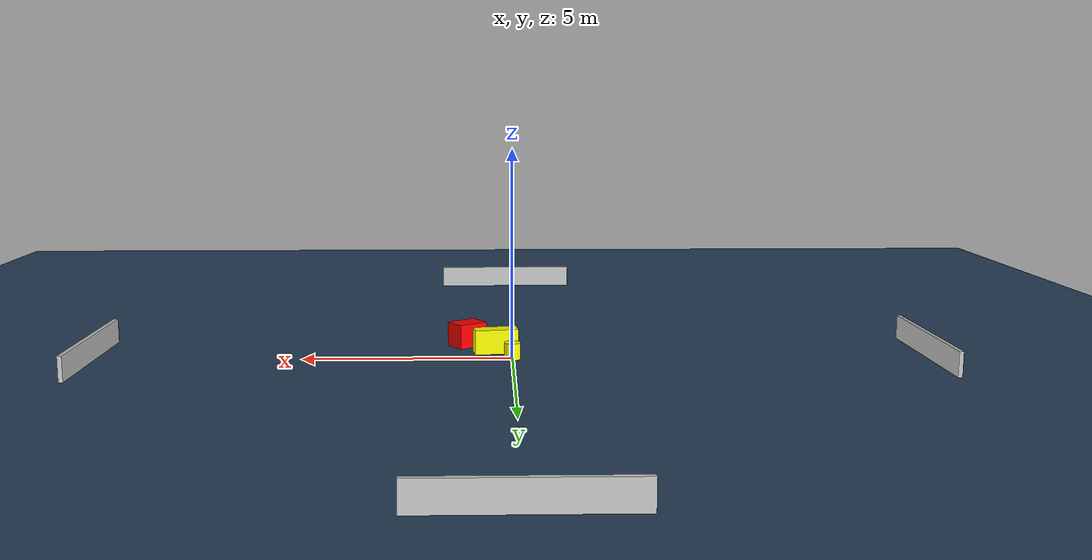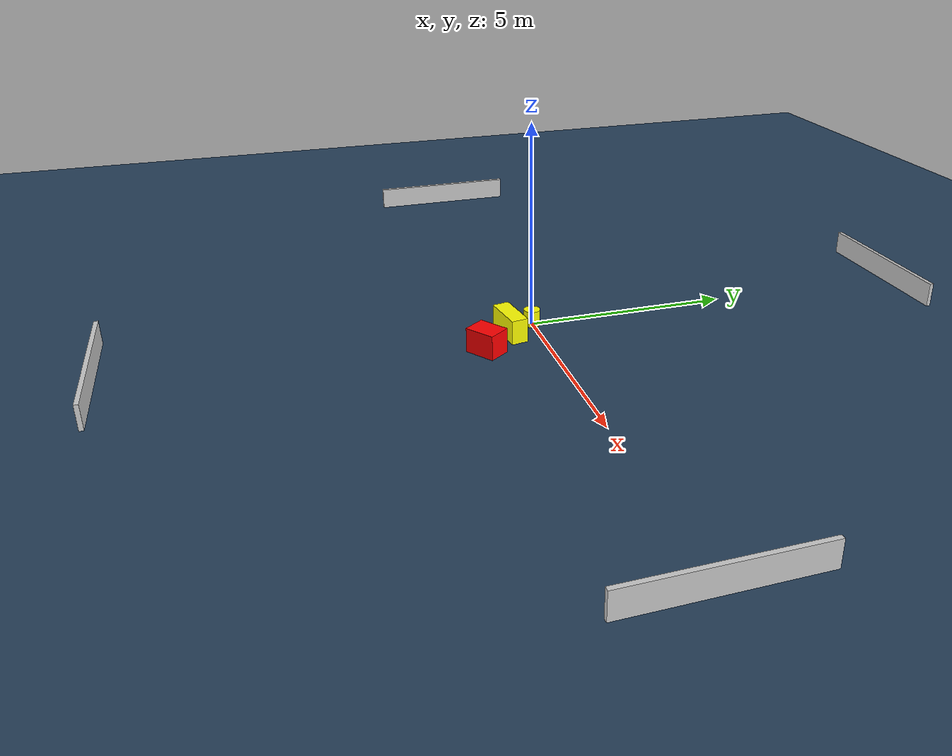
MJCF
<?xml version="1.0" ?>
<mujoco model="generated_environment">
  <option timestep="0.01" integrator="RK4" cone="elliptic"/>
  <default>
    <geom density="1"/>
  </default>
  <asset>
    <texture builtin="gradient" height="3072" name="skybox" rgb1="0.3 0.5 0.7" rgb2="0 0 0" type="skybox" width="512"/>
    <texture builtin="checker" height="300" name="groundplane" rgb1="0.2 0.3 0.4" rgb2="0.1 0.2 0.3" type="2d" width="300"/>
    <material name="groundplane" reflectance="0.2" texrepeat="5 5" texture="groundplane"/>
  </asset>
  <worldbody>
    <light dir="0 0 -1" directional="true" pos="0 0 1.5"/>
    <geom condim="3" friction="0.5 0.005 0.001" material="groundplane" name="floor" pos="0 0 0" size="0 0 0.05" type="plane"/>
    <body name="walls">
      <geom name="wall_1" condim="4" pos="-10.0 0.0 0.3" rgba="0.800000011920929 0.800000011920929 0.800000011920929 1.0" size="0.05 2.0 0.3" type="box"/>
      <geom name="wall_2" condim="4" pos="10.0 0.0 0.3" rgba="0.800000011920929 0.800000011920929 0.800000011920929 1.0" size="0.05 2.0 0.3" type="box"/>
      <geom name="wall_3" condim="4" pos="0.0 -10.0 0.3" rgba="0.800000011920929 0.800000011920929 0.800000011920929 1.0" size="2.0 0.05 0.3" type="box"/>
      <geom name="wall_4" condim="4" pos="0.0 10.0 0.3" rgba="0.800000011920929 0.800000011920929 0.800000011920929 1.0" size="2.0 0.05 0.3" type="box"/>
    </body>
    <body name="robot">
      <joint name="joint_x" type="slide" pos="0 0 0" axis="1 0 0"/>
      <joint name="joint_y" type="slide" pos="0 0 0" axis="0 1 0"/>
      <geom name="robot" type="cylinder" pos="0.0 0.0 0.2" size="0.2 0.2 0.0" mass="5.0" friction="1.0 0.005 0.0001" condim="4" rgba="1.0 1.0 0.0 1.0"/>
    </body>
    <body name="obstacle_1_movable">
      <geom name="obstacle_1_movable" condim="4" pos="0.3867980358628435 -0.6629621767661892 0.3" euler="0 0 279.6233042840318" friction="0.0 0.005 0.001" rgba="1.0 1.0 0.0 1.0" size="0.20376664387869733 0.531287038632491 0.3" type="box" mass="0.1"/>
      <joint type="free"/>
    </body>
    <body name="obstacle_2_static">
      <geom name="obstacle_2_static" condim="4" pos="1.0950705839756647 -1.4287786292551443 0.3" euler="0 0 36.08584985624101" friction="0.0 0.005 0.001" rgba="1.0 0.0 0.0 1.0" size="0.3828312599837296 0.281201782457476 0.3" type="box"/>
    </body>
  </worldbody>
  <actuator>
    <motor name="actuator_x" joint="joint_x" gear="1" ctrlrange="-1 1"/>
    <motor name="actuator_y" joint="joint_y" gear="1" ctrlrange="-1 1"/>
  </actuator>
</mujoco>
